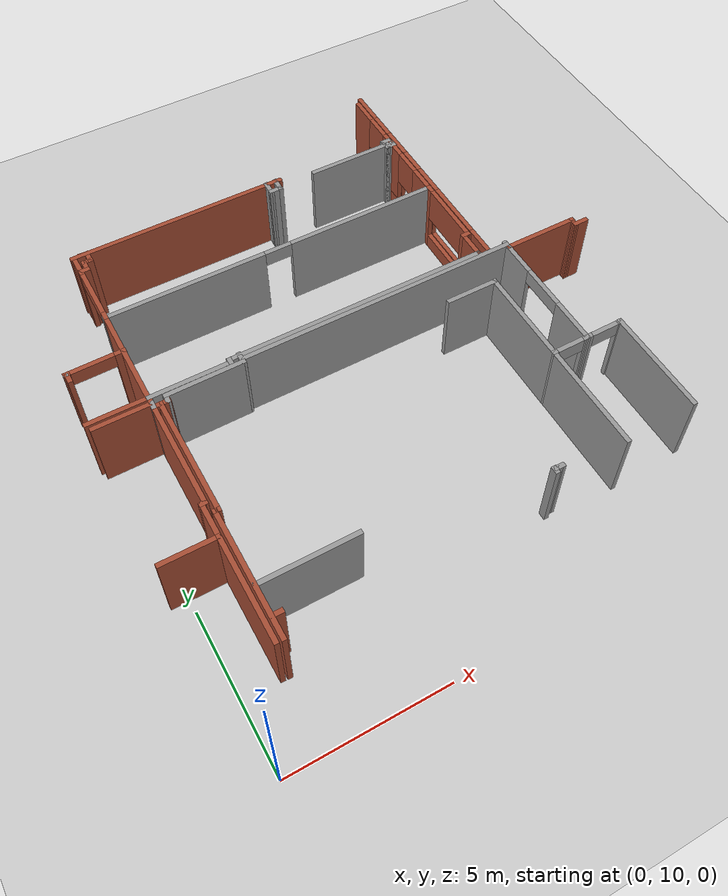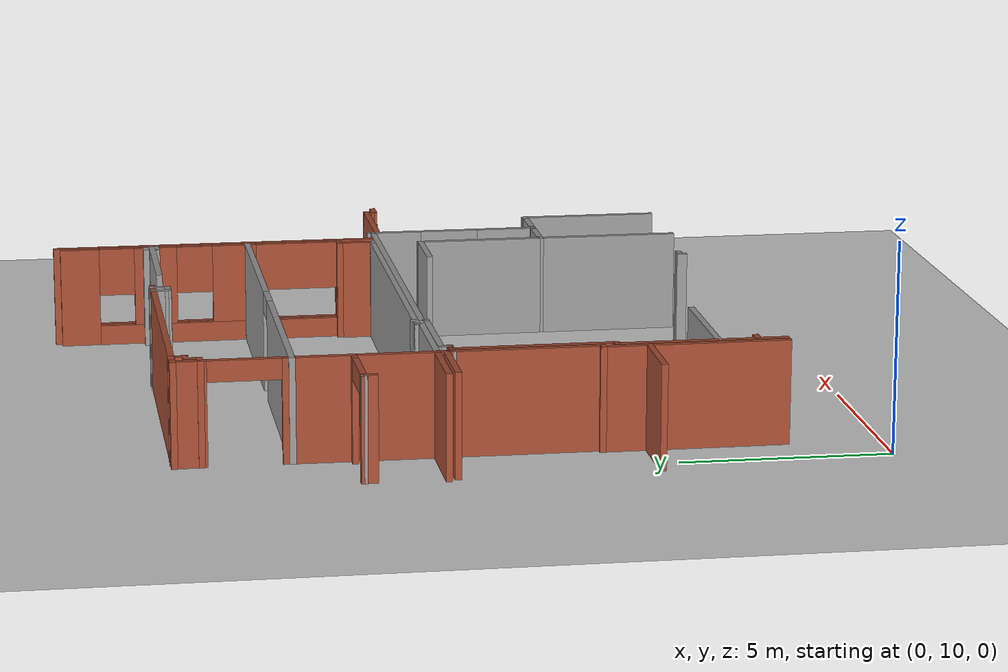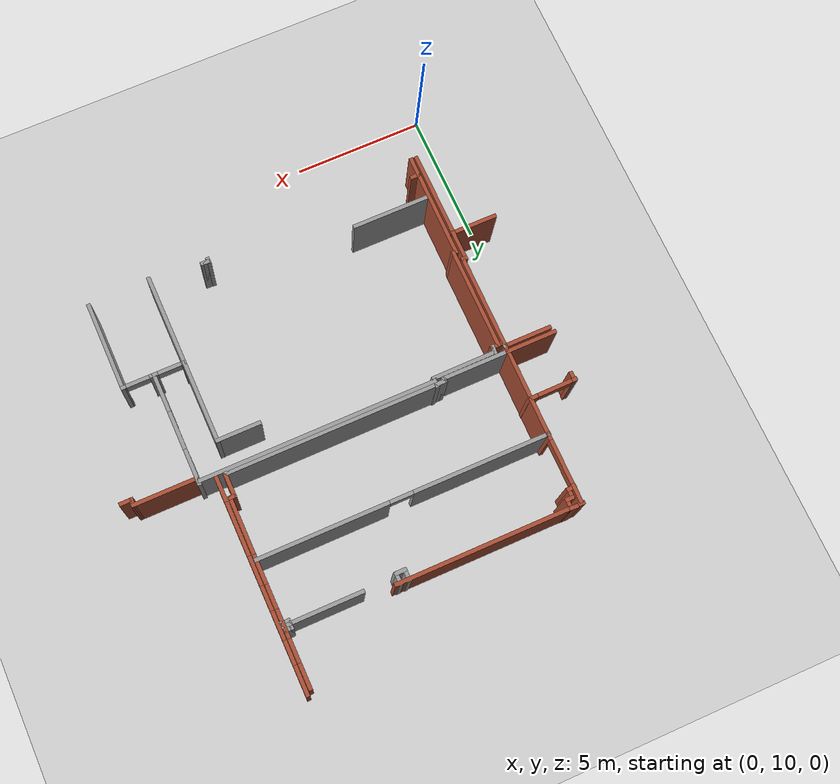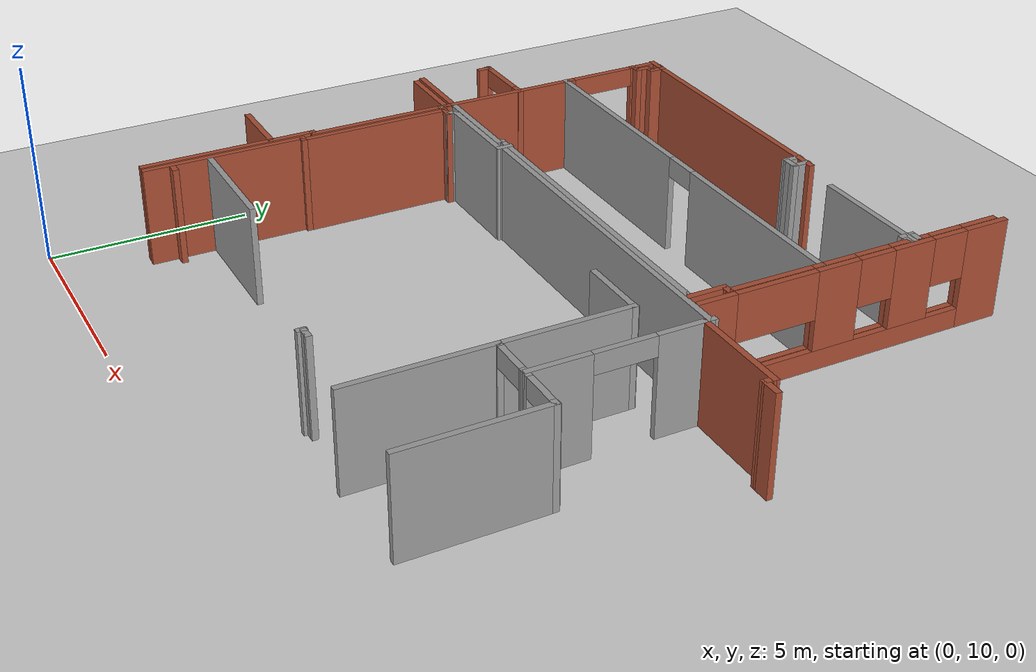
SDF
<sdf version="1.6">
 <world name="default">
  <model name="ground_plane">
   <static>1</static>
   <link name="link">
    <collision name="collision">
     <geometry><plane><normal>0 0 1</normal><size>100 100</size></plane></geometry>
     <surface><friction><ode><mu>100</mu><mu2>50</mu2></ode></friction></surface>
    </collision>
    <visual name="visual">
     <cast_shadows>0</cast_shadows>
     <geometry><plane><normal>0 0 1</normal><size>100 100</size></plane></geometry>
     <material>
      <script><uri>file://media/materials/scripts/gazebo.material</uri><name>Gazebo/Grey</name></script>
     </material>
    </visual>
   </link>
  </model>
  <model name="CVSSP">
   <pose>23.8714 24.094 0 0 -0 0</pose>
   <link name="Wall_427">
    <collision name="Wall_427_Collision">
     <geometry><box><size>7.25 0.15 2.5</size></box></geometry>
     <pose>0 0 1.25 0 -0 0</pose>
    </collision>
    <visual name="Wall_427_Visual">
     <pose>0 0 1.25 0 -0 0</pose>
     <geometry><box><size>7.25 0.15 2.5</size></box></geometry>
     <material>
      <script><uri>file://media/materials/scripts/gazebo.material</uri><name>Gazebo/Bricks</name></script>
      <ambient>1 1 1 1</ambient>
     </material>
    </visual>
    <pose>-19.076 2.26798 0 0 -0 3.14159</pose>
   </link>
   <link name="Wall_438">
    <pose>-11.4531 1.98101 0 0 0 -1.5708</pose>
    <visual name="Wall_438_Visual_0">
     <pose>-1.88418 0 1.25 0 -0 0</pose>
     <geometry><box><size>0.981638 0.15 2.5</size></box></geometry>
     <material>
      <script><uri>file://media/materials/scripts/gazebo.material</uri><name>Gazebo/Bricks</name></script>
      <ambient>1 1 1 1</ambient>
     </material>
    </visual>
    <collision name="Wall_438_Collision_0">
     <geometry><box><size>0.981638 0.15 2.5</size></box></geometry>
     <pose>-1.88418 0 1.25 0 -0 0</pose>
    </collision>
    <visual name="Wall_438_Visual_1">
     <pose>0.490819 0 0.25 0 -0 0</pose>
     <geometry><box><size>3.76836 0.15 0.5</size></box></geometry>
     <material>
      <script><uri>file://media/materials/scripts/gazebo.material</uri><name>Gazebo/Bricks</name></script>
      <ambient>1 1 1 1</ambient>
     </material>
    </visual>
    <collision name="Wall_438_Collision_1">
     <geometry><box><size>3.76836 0.15 0.5</size></box></geometry>
     <pose>0.490819 0 0.25 0 -0 0</pose>
    </collision>
    <visual name="Wall_438_Visual_2">
     <pose>0.039676 0 1.5 0 -0 0</pose>
     <geometry><box><size>1.08359 0.15 2</size></box></geometry>
     <material>
      <script><uri>file://media/materials/scripts/gazebo.material</uri><name>Gazebo/Bricks</name></script>
      <ambient>1 1 1 1</ambient>
     </material>
    </visual>
    <collision name="Wall_438_Collision_2">
     <geometry><box><size>1.08359 0.15 2</size></box></geometry>
     <pose>0.039676 0 1.5 0 -0 0</pose>
    </collision>
    <visual name="Wall_438_Visual_3">
     <pose>1.93363 0 1.5 0 -0 0</pose>
     <geometry><box><size>0.882734 0.15 2</size></box></geometry>
     <material>
      <script><uri>file://media/materials/scripts/gazebo.material</uri><name>Gazebo/Bricks</name></script>
      <ambient>1 1 1 1</ambient>
     </material>
    </visual>
    <collision name="Wall_438_Collision_3">
     <geometry><box><size>0.882734 0.15 2</size></box></geometry>
     <pose>1.93363 0 1.5 0 -0 0</pose>
    </collision>
    <visual name="Wall_438_Visual_4">
     <pose>-0.94774 0 1.9 0 -0 0</pose>
     <geometry><box><size>0.891243 0.15 1.2</size></box></geometry>
     <material>
      <script><uri>file://media/materials/scripts/gazebo.material</uri><name>Gazebo/Bricks</name></script>
      <ambient>1 1 1 1</ambient>
     </material>
    </visual>
    <collision name="Wall_438_Collision_4">
     <geometry><box><size>0.891243 0.15 1.2</size></box></geometry>
     <pose>-0.94774 0 1.9 0 -0 0</pose>
    </collision>
    <visual name="Wall_438_Visual_5">
     <pose>1.03687 0 1.9 0 -0 0</pose>
     <geometry><box><size>0.910795 0.15 1.2</size></box></geometry>
     <material>
      <script><uri>file://media/materials/scripts/gazebo.material</uri><name>Gazebo/Bricks</name></script>
      <ambient>1 1 1 1</ambient>
     </material>
    </visual>
    <collision name="Wall_438_Collision_5">
     <geometry><box><size>0.910795 0.15 1.2</size></box></geometry>
     <pose>1.03687 0 1.9 0 -0 0</pose>
    </collision>
   </link>
   <link name="Wall_440">
    <pose>-17.0303 -0.419062 0 0 -0 3.14158</pose>
    <visual name="Wall_440_Visual_0">
     <pose>-3.09878 0 1.25 0 -0 0</pose>
     <geometry><box><size>5.103 0.15 2.5</size></box></geometry>
     <material>
      <script><uri>file://media/materials/scripts/gazebo.material</uri><name>Gazebo/Grey</name></script>
      <ambient>0.588235 0.588235 0.588235 1</ambient>
     </material>
    </visual>
    <collision name="Wall_440_Collision_0">
     <geometry><box><size>5.103 0.15 2.5</size></box></geometry>
     <pose>-3.09878 0 1.25 0 -0 0</pose>
    </collision>
    <visual name="Wall_440_Visual_1">
     <pose>3.0015 0 1.25 0 -0 0</pose>
     <geometry><box><size>5.29756 0.15 2.5</size></box></geometry>
     <material>
      <script><uri>file://media/materials/scripts/gazebo.material</uri><name>Gazebo/Grey</name></script>
      <ambient>0.588235 0.588235 0.588235 1</ambient>
     </material>
    </visual>
    <collision name="Wall_440_Collision_1">
     <geometry><box><size>5.29756 0.15 2.5</size></box></geometry>
     <pose>3.0015 0 1.25 0 -0 0</pose>
    </collision>
    <visual name="Wall_440_Visual_2">
     <pose>-0.097282 0 2.25 0 -0 0</pose>
     <geometry><box><size>0.9 0.15 0.5</size></box></geometry>
     <material>
      <script><uri>file://media/materials/scripts/gazebo.material</uri><name>Gazebo/Grey</name></script>
      <ambient>0.588235 0.588235 0.588235 1</ambient>
     </material>
    </visual>
    <collision name="Wall_440_Collision_2">
     <geometry><box><size>0.9 0.15 0.5</size></box></geometry>
     <pose>-0.097282 0 2.25 0 -0 0</pose>
    </collision>
   </link>
   <link name="Wall_441">
    <pose>-22.5881 0.881009 0 0 -0 1.5708</pose>
    <visual name="Wall_441_Visual_0">
     <pose>-1.22545 0 1.25 0 -0 0</pose>
     <geometry><box><size>0.299105 0.15 2.5</size></box></geometry>
     <material>
      <script><uri>file://media/materials/scripts/gazebo.material</uri><name>Gazebo/Bricks</name></script>
      <ambient>1 1 1 1</ambient>
     </material>
    </visual>
    <collision name="Wall_441_Collision_0">
     <geometry><box><size>0.299105 0.15 2.5</size></box></geometry>
     <pose>-1.22545 0 1.25 0 -0 0</pose>
    </collision>
    <visual name="Wall_441_Visual_1">
     <pose>1.00205 0 1.25 0 -0 0</pose>
     <geometry><box><size>0.745895 0.15 2.5</size></box></geometry>
     <material>
      <script><uri>file://media/materials/scripts/gazebo.material</uri><name>Gazebo/Bricks</name></script>
      <ambient>1 1 1 1</ambient>
     </material>
    </visual>
    <collision name="Wall_441_Collision_1">
     <geometry><box><size>0.745895 0.15 2.5</size></box></geometry>
     <pose>1.00205 0 1.25 0 -0 0</pose>
    </collision>
    <visual name="Wall_441_Visual_2">
     <pose>-0.223395 0 2.25 0 -0 0</pose>
     <geometry><box><size>1.705 0.15 0.5</size></box></geometry>
     <material>
      <script><uri>file://media/materials/scripts/gazebo.material</uri><name>Gazebo/Bricks</name></script>
      <ambient>1 1 1 1</ambient>
     </material>
    </visual>
    <collision name="Wall_441_Collision_2">
     <geometry><box><size>1.705 0.15 0.5</size></box></geometry>
     <pose>-0.223395 0 2.25 0 -0 0</pose>
    </collision>
   </link>
   <link name="Wall_443">
    <collision name="Wall_443_Collision">
     <geometry><box><size>3.08833 0.15 2.5</size></box></geometry>
     <pose>0 0 1.25 0 -0 0</pose>
    </collision>
    <visual name="Wall_443_Visual">
     <pose>0 0 1.25 0 -0 0</pose>
     <geometry><box><size>3.08833 0.15 2.5</size></box></geometry>
     <material>
      <script><uri>file://media/materials/scripts/gazebo.material</uri><name>Gazebo/Grey</name></script>
      <ambient>0.588235 0.588235 0.588235 1</ambient>
     </material>
    </visual>
    <pose>-12.9025 2.02945 0 0 -0 3.14159</pose>
   </link>
   <link name="Wall_446">
    <collision name="Wall_446_Collision">
     <geometry><box><size>3.45993 0.15 2.5</size></box></geometry>
     <pose>0 0 1.25 0 -0 0</pose>
    </collision>
    <visual name="Wall_446_Visual">
     <pose>0 0 1.25 0 -0 0</pose>
     <geometry><box><size>3.45993 0.15 2.5</size></box></geometry>
     <material>
      <script><uri>file://media/materials/scripts/gazebo.material</uri><name>Gazebo/Bricks</name></script>
      <ambient>1 1 1 1</ambient>
     </material>
    </visual>
    <pose>-22.5968 -2.07393 0 0 0 -1.57608</pose>
   </link>
   <link name="Wall_447">
    <collision name="Wall_447_Collision">
     <geometry><box><size>2.66471 0.15 2.5</size></box></geometry>
     <pose>0 0 1.25 0 -0 0</pose>
    </collision>
    <visual name="Wall_447_Visual">
     <pose>0 0 1.25 0 -0 0</pose>
     <geometry><box><size>2.66471 0.15 2.5</size></box></geometry>
     <material>
      <script><uri>file://media/materials/scripts/gazebo.material</uri><name>Gazebo/Grey</name></script>
      <ambient>0.588235 0.588235 0.588235 1</ambient>
     </material>
    </visual>
    <pose>-21.3307 -3.72683 0 0 -0 0.001626</pose>
   </link>
   <link name="Wall_449">
    <collision name="Wall_449_Collision">
     <geometry><box><size>0.25 0.15 2.5</size></box></geometry>
     <pose>0 0 1.25 0 -0 0</pose>
    </collision>
    <visual name="Wall_449_Visual">
     <pose>0 0 1.25 0 -0 0</pose>
     <geometry><box><size>0.25 0.15 2.5</size></box></geometry>
     <material>
      <script><uri>file://media/materials/scripts/gazebo.material</uri><name>Gazebo/Grey</name></script>
      <ambient>1 1 1 1</ambient>
     </material>
    </visual>
    <pose>-20.0734 -3.67478 0 0 -0 1.5708</pose>
   </link>
   <link name="Wall_450">
    <collision name="Wall_450_Collision">
     <geometry><box><size>8.5 0.15 2.5</size></box></geometry>
     <pose>0 0 1.25 0 -0 0</pose>
    </collision>
    <visual name="Wall_450_Visual">
     <pose>0 0 1.25 0 -0 0</pose>
     <geometry><box><size>8.5 0.15 2.5</size></box></geometry>
     <material>
      <script><uri>file://media/materials/scripts/gazebo.material</uri><name>Gazebo/Grey</name></script>
      <ambient>0.588235 0.588235 0.588235 1</ambient>
     </material>
    </visual>
    <pose>-15.8984 -3.62478 0 0 -0 0</pose>
   </link>
   <link name="Wall_451">
    <collision name="Wall_451_Collision">
     <geometry><box><size>0.25 0.15 2.5</size></box></geometry>
     <pose>0 0 1.25 0 -0 0</pose>
    </collision>
    <visual name="Wall_451_Visual">
     <pose>0 0 1.25 0 -0 0</pose>
     <geometry><box><size>0.25 0.15 2.5</size></box></geometry>
     <material>
      <script><uri>file://media/materials/scripts/gazebo.material</uri><name>Gazebo/Grey</name></script>
      <ambient>1 1 1 1</ambient>
     </material>
    </visual>
    <pose>-11.6734 -3.62478 0 0 -0 0</pose>
   </link>
   <link name="Wall_452">
    <collision name="Wall_452_Collision">
     <geometry><box><size>1 0.15 2.5</size></box></geometry>
     <pose>0 0 1.25 0 -0 0</pose>
    </collision>
    <visual name="Wall_452_Visual">
     <pose>0 0 1.25 0 -0 0</pose>
     <geometry><box><size>1 0.15 2.5</size></box></geometry>
     <material>
      <script><uri>file://media/materials/scripts/gazebo.material</uri><name>Gazebo/Bricks</name></script>
      <ambient>1 1 1 1</ambient>
     </material>
    </visual>
    <pose>-11.6234 -3.19978 0 0 -0 1.5708</pose>
   </link>
   <link name="Wall_453">
    <collision name="Wall_453_Collision">
     <geometry><box><size>0.31087 0.15 2.5</size></box></geometry>
     <pose>0 0 1.25 0 -0 0</pose>
    </collision>
    <visual name="Wall_453_Visual">
     <pose>0 0 1.25 0 -0 0</pose>
     <geometry><box><size>0.31087 0.15 2.5</size></box></geometry>
     <material>
      <script><uri>file://media/materials/scripts/gazebo.material</uri><name>Gazebo/Bricks</name></script>
      <ambient>1 1 1 1</ambient>
     </material>
    </visual>
    <pose>-11.543 -2.77478 0 0 -0 0</pose>
   </link>
   <link name="Wall_456">
    <pose>-11.4588 -1.59696 0 0 0 -1.57398</pose>
    <visual name="Wall_456_Visual_0">
     <pose>-1.10718 0 1.25 0 -0 0</pose>
     <geometry><box><size>0.291309 0.15 2.5</size></box></geometry>
     <material>
      <script><uri>file://media/materials/scripts/gazebo.material</uri><name>Gazebo/Bricks</name></script>
      <ambient>1 1 1 1</ambient>
     </material>
    </visual>
    <collision name="Wall_456_Collision_0">
     <geometry><box><size>0.291309 0.15 2.5</size></box></geometry>
     <pose>-1.10718 0 1.25 0 -0 0</pose>
    </collision>
    <visual name="Wall_456_Visual_1">
     <pose>0.145655 0 0.25 0 -0 0</pose>
     <geometry><box><size>2.21435 0.15 0.5</size></box></geometry>
     <material>
      <script><uri>file://media/materials/scripts/gazebo.material</uri><name>Gazebo/Bricks</name></script>
      <ambient>1 1 1 1</ambient>
     </material>
    </visual>
    <collision name="Wall_456_Collision_1">
     <geometry><box><size>2.21435 0.15 0.5</size></box></geometry>
     <pose>0.145655 0 0.25 0 -0 0</pose>
    </collision>
    <visual name="Wall_456_Visual_2">
     <pose>1.18044 0 1.5 0 -0 0</pose>
     <geometry><box><size>0.144785 0.15 2</size></box></geometry>
     <material>
      <script><uri>file://media/materials/scripts/gazebo.material</uri><name>Gazebo/Bricks</name></script>
      <ambient>1 1 1 1</ambient>
     </material>
    </visual>
    <collision name="Wall_456_Collision_2">
     <geometry><box><size>0.144785 0.15 2</size></box></geometry>
     <pose>1.18044 0 1.5 0 -0 0</pose>
    </collision>
    <visual name="Wall_456_Visual_3">
     <pose>0.073262 0 1.9 0 -0 0</pose>
     <geometry><box><size>2.06957 0.15 1.2</size></box></geometry>
     <material>
      <script><uri>file://media/materials/scripts/gazebo.material</uri><name>Gazebo/Bricks</name></script>
      <ambient>1 1 1 1</ambient>
     </material>
    </visual>
    <collision name="Wall_456_Collision_3">
     <geometry><box><size>2.06957 0.15 1.2</size></box></geometry>
     <pose>0.073262 0 1.9 0 -0 0</pose>
    </collision>
   </link>
   <link name="Wall_462">
    <pose>-11.2891 0.422048 0 0 0 -1.5708</pose>
    <visual name="Wall_462_Visual_0">
     <pose>-3.525 0 1.25 0 -0 0</pose>
     <geometry><box><size>1.14727 0.15 2.5</size></box></geometry>
     <material>
      <script><uri>file://media/materials/scripts/gazebo.material</uri><name>Gazebo/Bricks</name></script>
      <ambient>1 1 1 1</ambient>
     </material>
    </visual>
    <collision name="Wall_462_Collision_0">
     <geometry><box><size>1.14727 0.15 2.5</size></box></geometry>
     <pose>-3.525 0 1.25 0 -0 0</pose>
    </collision>
    <visual name="Wall_462_Visual_1">
     <pose>0.573634 0 0.25 0 -0 0</pose>
     <geometry><box><size>7.04999 0.15 0.5</size></box></geometry>
     <material>
      <script><uri>file://media/materials/scripts/gazebo.material</uri><name>Gazebo/Bricks</name></script>
      <ambient>1 1 1 1</ambient>
     </material>
    </visual>
    <collision name="Wall_462_Collision_1">
     <geometry><box><size>7.04999 0.15 0.5</size></box></geometry>
     <pose>0.573634 0 0.25 0 -0 0</pose>
    </collision>
    <visual name="Wall_462_Visual_2">
     <pose>-1.51444 0 1.5 0 -0 0</pose>
     <geometry><box><size>1.07833 0.15 2</size></box></geometry>
     <material>
      <script><uri>file://media/materials/scripts/gazebo.material</uri><name>Gazebo/Bricks</name></script>
      <ambient>1 1 1 1</ambient>
     </material>
    </visual>
    <collision name="Wall_462_Collision_2">
     <geometry><box><size>1.07833 0.15 2</size></box></geometry>
     <pose>-1.51444 0 1.5 0 -0 0</pose>
    </collision>
    <visual name="Wall_462_Visual_3">
     <pose>0.505032 0 1.5 0 -0 0</pose>
     <geometry><box><size>1.11295 0.15 2</size></box></geometry>
     <material>
      <script><uri>file://media/materials/scripts/gazebo.material</uri><name>Gazebo/Bricks</name></script>
      <ambient>1 1 1 1</ambient>
     </material>
    </visual>
    <collision name="Wall_462_Collision_3">
     <geometry><box><size>1.11295 0.15 2</size></box></geometry>
     <pose>0.505032 0 1.5 0 -0 0</pose>
    </collision>
    <visual name="Wall_462_Visual_4">
     <pose>3.60899 0 1.5 0 -0 0</pose>
     <geometry><box><size>0.979272 0.15 2</size></box></geometry>
     <material>
      <script><uri>file://media/materials/scripts/gazebo.material</uri><name>Gazebo/Bricks</name></script>
      <ambient>1 1 1 1</ambient>
     </material>
    </visual>
    <collision name="Wall_462_Collision_4">
     <geometry><box><size>0.979272 0.15 2</size></box></geometry>
     <pose>3.60899 0 1.5 0 -0 0</pose>
    </collision>
    <visual name="Wall_462_Visual_5">
     <pose>-2.50248 0 1.9 0 -0 0</pose>
     <geometry><box><size>0.89776 0.15 1.2</size></box></geometry>
     <material>
      <script><uri>file://media/materials/scripts/gazebo.material</uri><name>Gazebo/Bricks</name></script>
      <ambient>1 1 1 1</ambient>
     </material>
    </visual>
    <collision name="Wall_462_Collision_5">
     <geometry><box><size>0.89776 0.15 1.2</size></box></geometry>
     <pose>-2.50248 0 1.9 0 -0 0</pose>
    </collision>
    <visual name="Wall_462_Visual_6">
     <pose>-0.513357 0 1.9 0 -0 0</pose>
     <geometry><box><size>0.92383 0.15 1.2</size></box></geometry>
     <material>
      <script><uri>file://media/materials/scripts/gazebo.material</uri><name>Gazebo/Bricks</name></script>
      <ambient>1 1 1 1</ambient>
     </material>
    </visual>
    <collision name="Wall_462_Collision_6">
     <geometry><box><size>0.92383 0.15 1.2</size></box></geometry>
     <pose>-0.513357 0 1.9 0 -0 0</pose>
    </collision>
    <visual name="Wall_462_Visual_7">
     <pose>2.09043 0 1.9 0 -0 0</pose>
     <geometry><box><size>2.05785 0.15 1.2</size></box></geometry>
     <material>
      <script><uri>file://media/materials/scripts/gazebo.material</uri><name>Gazebo/Bricks</name></script>
      <ambient>1 1 1 1</ambient>
     </material>
    </visual>
    <collision name="Wall_462_Collision_7">
     <geometry><box><size>2.05785 0.15 1.2</size></box></geometry>
     <pose>2.09043 0 1.9 0 -0 0</pose>
    </collision>
   </link>
   <link name="Wall_472">
    <pose>-23.462 -1.83453 0 0 0 -3.13211</pose>
    <visual name="Wall_472_Visual_0">
     <pose>-0.773733 0 1.25 0 -0 0</pose>
     <geometry><box><size>0.368389 0.15 2.5</size></box></geometry>
     <material>
      <script><uri>file://media/materials/scripts/gazebo.material</uri><name>Gazebo/Bricks</name></script>
      <ambient>1 1 1 1</ambient>
     </material>
    </visual>
    <collision name="Wall_472_Collision_0">
     <geometry><box><size>0.368389 0.15 2.5</size></box></geometry>
     <pose>-0.773733 0 1.25 0 -0 0</pose>
    </collision>
    <visual name="Wall_472_Visual_1">
     <pose>0.857678 0 1.25 0 -0 0</pose>
     <geometry><box><size>0.2005 0.15 2.5</size></box></geometry>
     <material>
      <script><uri>file://media/materials/scripts/gazebo.material</uri><name>Gazebo/Bricks</name></script>
      <ambient>1 1 1 1</ambient>
     </material>
    </visual>
    <collision name="Wall_472_Collision_1">
     <geometry><box><size>0.2005 0.15 2.5</size></box></geometry>
     <pose>0.857678 0 1.25 0 -0 0</pose>
    </collision>
    <visual name="Wall_472_Visual_2">
     <pose>0.083944 0 2.25 0 -0 0</pose>
     <geometry><box><size>1.34697 0.15 0.5</size></box></geometry>
     <material>
      <script><uri>file://media/materials/scripts/gazebo.material</uri><name>Gazebo/Bricks</name></script>
      <ambient>1 1 1 1</ambient>
     </material>
    </visual>
    <collision name="Wall_472_Collision_2">
     <geometry><box><size>1.34697 0.15 0.5</size></box></geometry>
     <pose>0.083944 0 2.25 0 -0 0</pose>
    </collision>
   </link>
   <link name="Wall_473">
    <collision name="Wall_473_Collision">
     <geometry><box><size>0.15 0.15 2.5</size></box></geometry>
     <pose>0 0 1.25 0 -0 0</pose>
    </collision>
    <visual name="Wall_473_Visual">
     <pose>0 0 1.25 0 -0 0</pose>
     <geometry><box><size>0.15 0.15 2.5</size></box></geometry>
     <material>
      <script><uri>file://media/materials/scripts/gazebo.material</uri><name>Gazebo/Grey</name></script>
      <ambient>1 1 1 1</ambient>
     </material>
    </visual>
    <pose>-24.3449 -1.8429 0 0 -0 0</pose>
   </link>
   <link name="Wall_476">
    <collision name="Wall_476_Collision">
     <geometry><box><size>0.342391 0.15 2.5</size></box></geometry>
     <pose>0 0 1.25 0 -0 0</pose>
    </collision>
    <visual name="Wall_476_Visual">
     <pose>0 0 1.25 0 -0 0</pose>
     <geometry><box><size>0.342391 0.15 2.5</size></box></geometry>
     <material>
      <script><uri>file://media/materials/scripts/gazebo.material</uri><name>Gazebo/Bricks</name></script>
      <ambient>1 1 1 1</ambient>
     </material>
    </visual>
    <pose>-24.3099 -1.99157 0 0 -0 1.5708</pose>
   </link>
   <link name="Wall_481">
    <collision name="Wall_481_Collision">
     <geometry><box><size>2 0.15 2.5</size></box></geometry>
     <pose>0 0 1.25 0 -0 0</pose>
    </collision>
    <visual name="Wall_481_Visual">
     <pose>0 0 1.25 0 -0 0</pose>
     <geometry><box><size>2 0.15 2.5</size></box></geometry>
     <material>
      <script><uri>file://media/materials/scripts/gazebo.material</uri><name>Gazebo/Bricks</name></script>
      <ambient>1 1 1 1</ambient>
     </material>
    </visual>
    <pose>-23.5131 -3.72887 0 0 -0 3.14159</pose>
   </link>
   <link name="Wall_483">
    <collision name="Wall_483_Collision">
     <geometry><box><size>0.368526 0.15 2.5</size></box></geometry>
     <pose>0 0 1.25 0 -0 0</pose>
    </collision>
    <visual name="Wall_483_Visual">
     <pose>0 0 1.25 0 -0 0</pose>
     <geometry><box><size>0.368526 0.15 2.5</size></box></geometry>
     <material>
      <script><uri>file://media/materials/scripts/gazebo.material</uri><name>Gazebo/Bricks</name></script>
      <ambient>1 1 1 1</ambient>
     </material>
    </visual>
    <pose>-22.5906 -3.83811 0 0 0 -1.59404</pose>
   </link>
   <link name="Wall_484">
    <collision name="Wall_484_Collision">
     <geometry><box><size>1.89901 0.15 2.5</size></box></geometry>
     <pose>0 0 1.25 0 -0 0</pose>
    </collision>
    <visual name="Wall_484_Visual">
     <pose>0 0 1.25 0 -0 0</pose>
     <geometry><box><size>1.89901 0.15 2.5</size></box></geometry>
     <material>
      <script><uri>file://media/materials/scripts/gazebo.material</uri><name>Gazebo/Bricks</name></script>
      <ambient>1 1 1 1</ambient>
     </material>
    </visual>
    <pose>-23.4677 -3.94734 0 0 -0 3.14159</pose>
   </link>
   <link name="Wall_486">
    <collision name="Wall_486_Collision">
     <geometry><box><size>0.44095 0.15 2.5</size></box></geometry>
     <pose>0 0 1.25 0 -0 0</pose>
    </collision>
    <visual name="Wall_486_Visual">
     <pose>0 0 1.25 0 -0 0</pose>
     <geometry><box><size>0.44095 0.15 2.5</size></box></geometry>
     <material>
      <script><uri>file://media/materials/scripts/gazebo.material</uri><name>Gazebo/Grey</name></script>
      <ambient>1 1 1 1</ambient>
     </material>
    </visual>
    <pose>-19.7491 -3.7278 0 0 0 -1.5708</pose>
   </link>
   <link name="Wall_487">
    <collision name="Wall_487_Collision">
     <geometry><box><size>2.55302 0.15 2.5</size></box></geometry>
     <pose>0 0 1.25 0 -0 0</pose>
    </collision>
    <visual name="Wall_487_Visual">
     <pose>0 0 1.25 0 -0 0</pose>
     <geometry><box><size>2.55302 0.15 2.5</size></box></geometry>
     <material>
      <script><uri>file://media/materials/scripts/gazebo.material</uri><name>Gazebo/Grey</name></script>
      <ambient>0.588235 0.588235 0.588235 1</ambient>
     </material>
    </visual>
    <pose>-20.9506 -3.87989 0 0 0 -3.13609</pose>
   </link>
   <link name="Wall_488">
    <collision name="Wall_488_Collision">
     <geometry><box><size>0.348298 0.15 2.5</size></box></geometry>
     <pose>0 0 1.25 0 -0 0</pose>
    </collision>
    <visual name="Wall_488_Visual">
     <pose>0 0 1.25 0 -0 0</pose>
     <geometry><box><size>0.348298 0.15 2.5</size></box></geometry>
     <material>
      <script><uri>file://media/materials/scripts/gazebo.material</uri><name>Gazebo/Grey</name></script>
      <ambient>1 1 1 1</ambient>
     </material>
    </visual>
    <pose>-22.1597 -3.98536 0 0 0 -1.64757</pose>
   </link>
   <link name="Wall_490">
    <collision name="Wall_490_Collision">
     <geometry><box><size>0.287462 0.15 2.5</size></box></geometry>
     <pose>0 0 1.25 0 -0 0</pose>
    </collision>
    <visual name="Wall_490_Visual">
     <pose>0 0 1.25 0 -0 0</pose>
     <geometry><box><size>0.287462 0.15 2.5</size></box></geometry>
     <material>
      <script><uri>file://media/materials/scripts/gazebo.material</uri><name>Gazebo/Grey</name></script>
      <ambient>1 1 1 1</ambient>
     </material>
    </visual>
    <pose>-22.5946 -4.01605 0 0 0 -1.59176</pose>
   </link>
   <link name="Wall_491">
    <collision name="Wall_491_Collision">
     <geometry><box><size>0.593962 0.15 2.5</size></box></geometry>
     <pose>0 0 1.25 0 -0 0</pose>
    </collision>
    <visual name="Wall_491_Visual">
     <pose>0 0 1.25 0 -0 0</pose>
     <geometry><box><size>0.593962 0.15 2.5</size></box></geometry>
     <material>
      <script><uri>file://media/materials/scripts/gazebo.material</uri><name>Gazebo/Bricks</name></script>
      <ambient>1 1 1 1</ambient>
     </material>
    </visual>
    <pose>-22.3741 -4.08449 0 0 -0 0.001245</pose>
   </link>
   <link name="Wall_493">
    <collision name="Wall_493_Collision">
     <geometry><box><size>3.61071 0.15 2.5</size></box></geometry>
     <pose>0 0 1.25 0 -0 0</pose>
    </collision>
    <visual name="Wall_493_Visual">
     <pose>0 0 1.25 0 -0 0</pose>
     <geometry><box><size>3.61071 0.15 2.5</size></box></geometry>
     <material>
      <script><uri>file://media/materials/scripts/gazebo.material</uri><name>Gazebo/Bricks</name></script>
      <ambient>1 1 1 1</ambient>
     </material>
    </visual>
    <pose>-22.5979 -5.81513 0 0 0 -1.57189</pose>
   </link>
   <link name="Wall_494">
    <collision name="Wall_494_Collision">
     <geometry><box><size>0.25 0.15 2.5</size></box></geometry>
     <pose>0 0 1.25 0 -0 0</pose>
    </collision>
    <visual name="Wall_494_Visual">
     <pose>0 0 1.25 0 -0 0</pose>
     <geometry><box><size>0.25 0.15 2.5</size></box></geometry>
     <material>
      <script><uri>file://media/materials/scripts/gazebo.material</uri><name>Gazebo/Bricks</name></script>
      <ambient>1 1 1 1</ambient>
     </material>
    </visual>
    <pose>-22.6498 -7.54548 0 0 -0 3.14159</pose>
   </link>
   <link name="Wall_495">
    <collision name="Wall_495_Collision">
     <geometry><box><size>1.21522 0.15 2.5</size></box></geometry>
     <pose>0 0 1.25 0 -0 0</pose>
    </collision>
    <visual name="Wall_495_Visual">
     <pose>0 0 1.25 0 -0 0</pose>
     <geometry><box><size>1.21522 0.15 2.5</size></box></geometry>
     <material>
      <script><uri>file://media/materials/scripts/gazebo.material</uri><name>Gazebo/Bricks</name></script>
      <ambient>1 1 1 1</ambient>
     </material>
    </visual>
    <pose>-22.6998 -8.07809 0 0 0 -1.5708</pose>
   </link>
   <link name="Wall_497">
    <collision name="Wall_497_Collision">
     <geometry><box><size>1.80653 0.15 2.5</size></box></geometry>
     <pose>0 0 1.25 0 -0 0</pose>
    </collision>
    <visual name="Wall_497_Visual">
     <pose>0 0 1.25 0 -0 0</pose>
     <geometry><box><size>1.80653 0.15 2.5</size></box></geometry>
     <material>
      <script><uri>file://media/materials/scripts/gazebo.material</uri><name>Gazebo/Bricks</name></script>
      <ambient>1 1 1 1</ambient>
     </material>
    </visual>
    <pose>-23.5281 -8.61722 0 0 -0 3.13897</pose>
   </link>
   <link name="Wall_500">
    <collision name="Wall_500_Collision">
     <geometry><box><size>3.96739 0.15 2.5</size></box></geometry>
     <pose>0 0 1.25 0 -0 0</pose>
    </collision>
    <visual name="Wall_500_Visual">
     <pose>0 0 1.25 0 -0 0</pose>
     <geometry><box><size>3.96739 0.15 2.5</size></box></geometry>
     <material>
      <script><uri>file://media/materials/scripts/gazebo.material</uri><name>Gazebo/Bricks</name></script>
      <ambient>1 1 1 1</ambient>
     </material>
    </visual>
    <pose>-22.3824 -5.99331 0 0 0 -1.5708</pose>
   </link>
   <link name="Wall_502">
    <collision name="Wall_502_Collision">
     <geometry><box><size>0.25 0.15 2.5</size></box></geometry>
     <pose>0 0 1.25 0 -0 0</pose>
    </collision>
    <visual name="Wall_502_Visual">
     <pose>0 0 1.25 0 -0 0</pose>
     <geometry><box><size>0.25 0.15 2.5</size></box></geometry>
     <material>
      <script><uri>file://media/materials/scripts/gazebo.material</uri><name>Gazebo/Bricks</name></script>
      <ambient>1 1 1 1</ambient>
     </material>
    </visual>
    <pose>-22.4324 -7.902 0 0 -0 3.14159</pose>
   </link>
   <link name="Wall_503">
    <collision name="Wall_503_Collision">
     <geometry><box><size>4.11037 0.15 2.5</size></box></geometry>
     <pose>0 0 1.25 0 -0 0</pose>
    </collision>
    <visual name="Wall_503_Visual">
     <pose>0 0 1.25 0 -0 0</pose>
     <geometry><box><size>4.11037 0.15 2.5</size></box></geometry>
     <material>
      <script><uri>file://media/materials/scripts/gazebo.material</uri><name>Gazebo/Bricks</name></script>
      <ambient>1 1 1 1</ambient>
     </material>
    </visual>
    <pose>-22.4867 -9.88218 0 0 0 -1.57292</pose>
   </link>
   <link name="Wall_522">
    <collision name="Wall_522_Collision">
     <geometry><box><size>3.38312 0.15 2.5</size></box></geometry>
     <pose>0 0 1.25 0 -0 0</pose>
    </collision>
    <visual name="Wall_522_Visual">
     <pose>0 0 1.25 0 -0 0</pose>
     <geometry><box><size>3.38312 0.15 2.5</size></box></geometry>
     <material>
      <script><uri>file://media/materials/scripts/gazebo.material</uri><name>Gazebo/Bricks</name></script>
      <ambient>1 1 1 1</ambient>
     </material>
    </visual>
    <pose>-22.6978 -10.236 0 0 -0 1.57204</pose>
   </link>
   <link name="Wall_524">
    <pose>-10.6649 -5.806 0 0 0 -1.5708</pose>
    <visual name="Wall_524_Visual_0">
     <pose>-1.50177 0 1.25 0 -0 0</pose>
     <geometry><box><size>1.40395 0.15 2.5</size></box></geometry>
     <material>
      <script><uri>file://media/materials/scripts/gazebo.material</uri><name>Gazebo/Grey</name></script>
      <ambient>0.588235 0.588235 0.588235 1</ambient>
     </material>
    </visual>
    <collision name="Wall_524_Collision_0">
     <geometry><box><size>1.40395 0.15 2.5</size></box></geometry>
     <pose>-1.50177 0 1.25 0 -0 0</pose>
    </collision>
    <visual name="Wall_524_Visual_1">
     <pose>1.44258 0 1.25 0 -0 0</pose>
     <geometry><box><size>1.52232 0.15 2.5</size></box></geometry>
     <material>
      <script><uri>file://media/materials/scripts/gazebo.material</uri><name>Gazebo/Grey</name></script>
      <ambient>0.588235 0.588235 0.588235 1</ambient>
     </material>
    </visual>
    <collision name="Wall_524_Collision_1">
     <geometry><box><size>1.52232 0.15 2.5</size></box></geometry>
     <pose>1.44258 0 1.25 0 -0 0</pose>
    </collision>
    <visual name="Wall_524_Visual_2">
     <pose>-0.059186 0 2.25 0 -0 0</pose>
     <geometry><box><size>1.48121 0.15 0.5</size></box></geometry>
     <material>
      <script><uri>file://media/materials/scripts/gazebo.material</uri><name>Gazebo/Grey</name></script>
      <ambient>0.588235 0.588235 0.588235 1</ambient>
     </material>
    </visual>
    <collision name="Wall_524_Collision_2">
     <geometry><box><size>1.48121 0.15 0.5</size></box></geometry>
     <pose>-0.059186 0 2.25 0 -0 0</pose>
    </collision>
   </link>
   <link name="Wall_525">
    <pose>-11.2447 -7.9568 0 0 -0 3.13973</pose>
    <visual name="Wall_525_Visual_0">
     <pose>-0.544548 0 1.25 0 -0 0</pose>
     <geometry><box><size>0.220502 0.15 2.5</size></box></geometry>
     <material>
      <script><uri>file://media/materials/scripts/gazebo.material</uri><name>Gazebo/Grey</name></script>
      <ambient>0.588235 0.588235 0.588235 1</ambient>
     </material>
    </visual>
    <collision name="Wall_525_Collision_0">
     <geometry><box><size>0.220502 0.15 2.5</size></box></geometry>
     <pose>-0.544548 0 1.25 0 -0 0</pose>
    </collision>
    <visual name="Wall_525_Visual_1">
     <pose>0.560251 0 1.25 0 -0 0</pose>
     <geometry><box><size>0.189095 0.15 2.5</size></box></geometry>
     <material>
      <script><uri>file://media/materials/scripts/gazebo.material</uri><name>Gazebo/Grey</name></script>
      <ambient>0.588235 0.588235 0.588235 1</ambient>
     </material>
    </visual>
    <collision name="Wall_525_Collision_1">
     <geometry><box><size>0.189095 0.15 2.5</size></box></geometry>
     <pose>0.560251 0 1.25 0 -0 0</pose>
    </collision>
    <visual name="Wall_525_Visual_2">
     <pose>0.015703 0 2.25 0 -0 0</pose>
     <geometry><box><size>0.9 0.15 0.5</size></box></geometry>
     <material>
      <script><uri>file://media/materials/scripts/gazebo.material</uri><name>Gazebo/Grey</name></script>
      <ambient>0.588235 0.588235 0.588235 1</ambient>
     </material>
    </visual>
    <collision name="Wall_525_Collision_2">
     <geometry><box><size>0.9 0.15 0.5</size></box></geometry>
     <pose>0.015703 0 2.25 0 -0 0</pose>
    </collision>
   </link>
   <link name="Wall_526">
    <collision name="Wall_526_Collision">
     <geometry><box><size>3.58305 0.15 2.5</size></box></geometry>
     <pose>0 0 1.25 0 -0 0</pose>
    </collision>
    <visual name="Wall_526_Visual">
     <pose>0 0 1.25 0 -0 0</pose>
     <geometry><box><size>3.58305 0.15 2.5</size></box></geometry>
     <material>
      <script><uri>file://media/materials/scripts/gazebo.material</uri><name>Gazebo/Grey</name></script>
      <ambient>0.588235 0.588235 0.588235 1</ambient>
     </material>
    </visual>
    <pose>-11.8234 -9.67224 0 0 0 -1.5702</pose>
   </link>
   <link name="Wall_528">
    <pose>-10.0632 -7.95787 0 0 -0 0</pose>
    <visual name="Wall_528_Visual_0">
     <pose>-0.550159 0 1.25 0 -0 0</pose>
     <geometry><box><size>0.253402 0.15 2.5</size></box></geometry>
     <material>
      <script><uri>file://media/materials/scripts/gazebo.material</uri><name>Gazebo/Grey</name></script>
      <ambient>0.588235 0.588235 0.588235 1</ambient>
     </material>
    </visual>
    <collision name="Wall_528_Collision_0">
     <geometry><box><size>0.253402 0.15 2.5</size></box></geometry>
     <pose>-0.550159 0 1.25 0 -0 0</pose>
    </collision>
    <visual name="Wall_528_Visual_1">
     <pose>0.576701 0 1.25 0 -0 0</pose>
     <geometry><box><size>0.200318 0.15 2.5</size></box></geometry>
     <material>
      <script><uri>file://media/materials/scripts/gazebo.material</uri><name>Gazebo/Grey</name></script>
      <ambient>0.588235 0.588235 0.588235 1</ambient>
     </material>
    </visual>
    <collision name="Wall_528_Collision_1">
     <geometry><box><size>0.200318 0.15 2.5</size></box></geometry>
     <pose>0.576701 0 1.25 0 -0 0</pose>
    </collision>
    <visual name="Wall_528_Visual_2">
     <pose>0.026542 0 2.25 0 -0 0</pose>
     <geometry><box><size>0.9 0.15 0.5</size></box></geometry>
     <material>
      <script><uri>file://media/materials/scripts/gazebo.material</uri><name>Gazebo/Grey</name></script>
      <ambient>0.588235 0.588235 0.588235 1</ambient>
     </material>
    </visual>
    <collision name="Wall_528_Collision_2">
     <geometry><box><size>0.9 0.15 0.5</size></box></geometry>
     <pose>0.026542 0 2.25 0 -0 0</pose>
    </collision>
   </link>
   <link name="Wall_529">
    <collision name="Wall_529_Collision">
     <geometry><box><size>3.5 0.15 2.5</size></box></geometry>
     <pose>0 0 1.25 0 -0 0</pose>
    </collision>
    <visual name="Wall_529_Visual">
     <pose>0 0 1.25 0 -0 0</pose>
     <geometry><box><size>3.5 0.15 2.5</size></box></geometry>
     <material>
      <script><uri>file://media/materials/scripts/gazebo.material</uri><name>Gazebo/Grey</name></script>
      <ambient>0.588235 0.588235 0.588235 1</ambient>
     </material>
    </visual>
    <pose>-9.4614 -9.62137 0 0 0 -1.5708</pose>
   </link>
   <link name="Wall_531">
    <collision name="Wall_531_Collision">
     <geometry><box><size>3.27645 0.15 2.5</size></box></geometry>
     <pose>0 0 1.25 0 -0 0</pose>
    </collision>
    <visual name="Wall_531_Visual">
     <pose>0 0 1.25 0 -0 0</pose>
     <geometry><box><size>3.27645 0.15 2.5</size></box></geometry>
     <material>
      <script><uri>file://media/materials/scripts/gazebo.material</uri><name>Gazebo/Grey</name></script>
      <ambient>0.588235 0.588235 0.588235 1</ambient>
     </material>
    </visual>
    <pose>-11.8245 -6.39249 0 0 -0 1.5708</pose>
   </link>
   <link name="Wall_558">
    <collision name="Wall_558_Collision">
     <geometry><box><size>0.25 0.15 2.5</size></box></geometry>
     <pose>0 0 1.25 0 -0 0</pose>
    </collision>
    <visual name="Wall_558_Visual">
     <pose>0 0 1.25 0 -0 0</pose>
     <geometry><box><size>0.25 0.15 2.5</size></box></geometry>
     <material>
      <script><uri>file://media/materials/scripts/gazebo.material</uri><name>Gazebo/Grey</name></script>
      <ambient>1 1 1 1</ambient>
     </material>
    </visual>
    <pose>-13.8779 -11.1683 0 0 -0 3.14159</pose>
   </link>
   <link name="Wall_559">
    <collision name="Wall_559_Collision">
     <geometry><box><size>0.25 0.15 2.5</size></box></geometry>
     <pose>0 0 1.25 0 -0 0</pose>
    </collision>
    <visual name="Wall_559_Visual">
     <pose>0 0 1.25 0 -0 0</pose>
     <geometry><box><size>0.25 0.15 2.5</size></box></geometry>
     <material>
      <script><uri>file://media/materials/scripts/gazebo.material</uri><name>Gazebo/Grey</name></script>
      <ambient>1 1 1 1</ambient>
     </material>
    </visual>
    <pose>-13.9779 -11.1683 0 0 -0 3.14159</pose>
   </link>
   <link name="Wall_562">
    <collision name="Wall_562_Collision">
     <geometry><box><size>0.249529 0.15 2.5</size></box></geometry>
     <pose>0 0 1.25 0 -0 0</pose>
    </collision>
    <visual name="Wall_562_Visual">
     <pose>0 0 1.25 0 -0 0</pose>
     <geometry><box><size>0.249529 0.15 2.5</size></box></geometry>
     <material>
      <script><uri>file://media/materials/scripts/gazebo.material</uri><name>Gazebo/Grey</name></script>
      <ambient>1 1 1 1</ambient>
     </material>
    </visual>
    <pose>-14.0684 -11.2015 0 0 0 -1.5708</pose>
   </link>
   <link name="Wall_584">
    <collision name="Wall_584_Collision">
     <geometry><box><size>3.0958 0.15 2.5</size></box></geometry>
     <pose>0 0 1.25 0 -0 0</pose>
    </collision>
    <visual name="Wall_584_Visual">
     <pose>0 0 1.25 0 -0 0</pose>
     <geometry><box><size>3.0958 0.15 2.5</size></box></geometry>
     <material>
      <script><uri>file://media/materials/scripts/gazebo.material</uri><name>Gazebo/Grey</name></script>
      <ambient>0.588235 0.588235 0.588235 1</ambient>
     </material>
    </visual>
    <pose>-20.9847 -10.2804 0 0 0 -0.001578</pose>
   </link>
   <link name="Wall_588">
    <collision name="Wall_588_Collision">
     <geometry><box><size>1.75 0.15 2.5</size></box></geometry>
     <pose>0 0 1.25 0 -0 0</pose>
    </collision>
    <visual name="Wall_588_Visual">
     <pose>0 0 1.25 0 -0 0</pose>
     <geometry><box><size>1.75 0.15 2.5</size></box></geometry>
     <material>
      <script><uri>file://media/materials/scripts/gazebo.material</uri><name>Gazebo/Grey</name></script>
      <ambient>1 1 1 1</ambient>
     </material>
    </visual>
    <pose>-12.6245 -4.84249 0 0 -0 0</pose>
   </link>
   <link name="Wall_592">
    <collision name="Wall_592_Collision">
     <geometry><box><size>9.22236 0.15 2.5</size></box></geometry>
     <pose>0 0 1.25 0 -0 0</pose>
    </collision>
    <visual name="Wall_592_Visual">
     <pose>0 0 1.25 0 -0 0</pose>
     <geometry><box><size>9.22236 0.15 2.5</size></box></geometry>
     <material>
      <script><uri>file://media/materials/scripts/gazebo.material</uri><name>Gazebo/Grey</name></script>
      <ambient>0.588235 0.588235 0.588235 1</ambient>
     </material>
    </visual>
    <pose>-15.1997 -3.76312 0 0 -0 0.001458</pose>
   </link>
   <link name="Wall_706">
    <collision name="Wall_706_Collision">
     <geometry><box><size>0.477342 0.15 2.5</size></box></geometry>
     <pose>0 0 1.25 0 -0 0</pose>
    </collision>
    <visual name="Wall_706_Visual">
     <pose>0 0 1.25 0 -0 0</pose>
     <geometry><box><size>0.477342 0.15 2.5</size></box></geometry>
     <material>
      <script><uri>file://media/materials/scripts/gazebo.material</uri><name>Gazebo/Grey</name></script>
      <ambient>0.588235 0.588235 0.588235 1</ambient>
     </material>
    </visual>
    <pose>-15.8371 1.91937 0 0 -0 0</pose>
   </link>
   <link name="Wall_707">
    <collision name="Wall_707_Collision">
     <geometry><box><size>0.522925 0.15 2.5</size></box></geometry>
     <pose>0 0 1.25 0 -0 0</pose>
    </collision>
    <visual name="Wall_707_Visual">
     <pose>0 0 1.25 0 -0 0</pose>
     <geometry><box><size>0.522925 0.15 2.5</size></box></geometry>
     <material>
      <script><uri>file://media/materials/scripts/gazebo.material</uri><name>Gazebo/Grey</name></script>
      <ambient>0.588235 0.588235 0.588235 1</ambient>
     </material>
    </visual>
    <pose>-15.6736 2.10568 0 0 -0 1.5708</pose>
   </link>
   <link name="Wall_709">
    <collision name="Wall_709_Collision">
     <geometry><box><size>0.522692 0.15 2.5</size></box></geometry>
     <pose>0 0 1.25 0 -0 0</pose>
    </collision>
    <visual name="Wall_709_Visual">
     <pose>0 0 1.25 0 -0 0</pose>
     <geometry><box><size>0.522692 0.15 2.5</size></box></geometry>
     <material>
      <script><uri>file://media/materials/scripts/gazebo.material</uri><name>Gazebo/Grey</name></script>
      <ambient>0.588235 0.588235 0.588235 1</ambient>
     </material>
    </visual>
    <pose>-15.9968 2.10568 0 0 0 -1.5912</pose>
   </link>
   <link name="Wall_711">
    <collision name="Wall_711_Collision">
     <geometry><box><size>0.371249 0.15 2.5</size></box></geometry>
     <pose>0 0 1.25 0 -0 0</pose>
    </collision>
    <visual name="Wall_711_Visual">
     <pose>0 0 1.25 0 -0 0</pose>
     <geometry><box><size>0.371249 0.15 2.5</size></box></geometry>
     <material>
      <script><uri>file://media/materials/scripts/gazebo.material</uri><name>Gazebo/Bricks</name></script>
      <ambient>1 1 1 1</ambient>
     </material>
    </visual>
    <pose>-22.4889 1.64373 0 0 -0 0</pose>
   </link>
   <link name="Wall_712">
    <collision name="Wall_712_Collision">
     <geometry><box><size>0.46176 0.15 2.5</size></box></geometry>
     <pose>0 0 1.25 0 -0 0</pose>
    </collision>
    <visual name="Wall_712_Visual">
     <pose>0 0 1.25 0 -0 0</pose>
     <geometry><box><size>0.46176 0.15 2.5</size></box></geometry>
     <material>
      <script><uri>file://media/materials/scripts/gazebo.material</uri><name>Gazebo/Bricks</name></script>
      <ambient>1 1 1 1</ambient>
     </material>
    </visual>
    <pose>-22.3783 1.79961 0 0 -0 1.5708</pose>
   </link>
   <link name="Wall_713">
    <collision name="Wall_713_Collision">
     <geometry><box><size>0.361193 0.15 2.5</size></box></geometry>
     <pose>0 0 1.25 0 -0 0</pose>
    </collision>
    <visual name="Wall_713_Visual">
     <pose>0 0 1.25 0 -0 0</pose>
     <geometry><box><size>0.361193 0.15 2.5</size></box></geometry>
     <material>
      <script><uri>file://media/materials/scripts/gazebo.material</uri><name>Gazebo/Bricks</name></script>
      <ambient>1 1 1 1</ambient>
     </material>
    </visual>
    <pose>-22.2727 1.95549 0 0 -0 0</pose>
   </link>
   <link name="Wall_714">
    <collision name="Wall_714_Collision">
     <geometry><box><size>0.471817 0.15 2.5</size></box></geometry>
     <pose>0 0 1.25 0 -0 0</pose>
    </collision>
    <visual name="Wall_714_Visual">
     <pose>0 0 1.25 0 -0 0</pose>
     <geometry><box><size>0.471817 0.15 2.5</size></box></geometry>
     <material>
      <script><uri>file://media/materials/scripts/gazebo.material</uri><name>Gazebo/Bricks</name></script>
      <ambient>1 1 1 1</ambient>
     </material>
    </visual>
    <pose>-22.1671 2.1164 0 0 -0 1.5708</pose>
   </link>
   <link name="Wall_715">
    <collision name="Wall_715_Collision">
     <geometry><box><size>0.351387 0.15 2.5</size></box></geometry>
     <pose>0 0 1.25 0 -0 0</pose>
    </collision>
    <visual name="Wall_715_Visual">
     <pose>0 0 1.25 0 -0 0</pose>
     <geometry><box><size>0.351387 0.15 2.5</size></box></geometry>
     <material>
      <script><uri>file://media/materials/scripts/gazebo.material</uri><name>Gazebo/Bricks</name></script>
      <ambient>1 1 1 1</ambient>
     </material>
    </visual>
    <pose>-22.2677 2.28234 0 0 -0 3.09163</pose>
   </link>
   <link name="Wall_718">
    <collision name="Wall_718_Collision">
     <geometry><box><size>0.341762 0.15 2.5</size></box></geometry>
     <pose>0 0 1.25 0 -0 0</pose>
    </collision>
    <visual name="Wall_718_Visual">
     <pose>0 0 1.25 0 -0 0</pose>
     <geometry><box><size>0.341762 0.15 2.5</size></box></geometry>
     <material>
      <script><uri>file://media/materials/scripts/gazebo.material</uri><name>Gazebo/Grey</name></script>
      <ambient>1 1 1 1</ambient>
     </material>
    </visual>
    <pose>-11.5709 2.18477 0 0 -0 3.14159</pose>
   </link>
   <link name="Wall_719">
    <collision name="Wall_719_Collision">
     <geometry><box><size>0.4145 0.15 2.5</size></box></geometry>
     <pose>0 0 1.25 0 -0 0</pose>
    </collision>
    <visual name="Wall_719_Visual">
     <pose>0 0 1.25 0 -0 0</pose>
     <geometry><box><size>0.4145 0.15 2.5</size></box></geometry>
     <material>
      <script><uri>file://media/materials/scripts/gazebo.material</uri><name>Gazebo/Grey</name></script>
      <ambient>1 1 1 1</ambient>
     </material>
    </visual>
    <pose>-11.6667 2.05252 0 0 0 -1.5708</pose>
   </link>
   <link name="Wall_720">
    <collision name="Wall_720_Collision">
     <geometry><box><size>0.394752 0.15 2.5</size></box></geometry>
     <pose>0 0 1.25 0 -0 0</pose>
    </collision>
    <visual name="Wall_720_Visual">
     <pose>0 0 1.25 0 -0 0</pose>
     <geometry><box><size>0.394752 0.15 2.5</size></box></geometry>
     <material>
      <script><uri>file://media/materials/scripts/gazebo.material</uri><name>Gazebo/Grey</name></script>
      <ambient>1 1 1 1</ambient>
     </material>
    </visual>
    <pose>-11.5444 1.92027 0 0 -0 0</pose>
   </link>
   <link name="Wall_780">
    <collision name="Wall_780_Collision">
     <geometry><box><size>0.376102 0.15 2.5</size></box></geometry>
     <pose>0 0 1.25 0 -0 0</pose>
    </collision>
    <visual name="Wall_780_Visual">
     <pose>0 0 1.25 0 -0 0</pose>
     <geometry><box><size>0.376102 0.15 2.5</size></box></geometry>
     <material>
      <script><uri>file://media/materials/scripts/gazebo.material</uri><name>Gazebo/Bricks</name></script>
      <ambient>1 1 1 1</ambient>
     </material>
    </visual>
    <pose>-22.338 -11.2138 0 0 -0 0</pose>
   </link>
   <link name="Wall_800">
    <collision name="Wall_800_Collision">
     <geometry><box><size>2.52089 0.15 2.5</size></box></geometry>
     <pose>0 0 1.25 0 -0 0</pose>
    </collision>
    <visual name="Wall_800_Visual">
     <pose>0 0 1.25 0 -0 0</pose>
     <geometry><box><size>2.52089 0.15 2.5</size></box></geometry>
     <material>
      <script><uri>file://media/materials/scripts/gazebo.material</uri><name>Gazebo/Bricks</name></script>
      <ambient>1 1 1 1</ambient>
     </material>
    </visual>
    <pose>-9.45754 -3.87382 0 0 -0 0</pose>
   </link>
   <link name="Wall_801">
    <collision name="Wall_801_Collision">
     <geometry><box><size>0.358175 0.15 2.5</size></box></geometry>
     <pose>0 0 1.25 0 -0 0</pose>
    </collision>
    <visual name="Wall_801_Visual">
     <pose>0 0 1.25 0 -0 0</pose>
     <geometry><box><size>0.358175 0.15 2.5</size></box></geometry>
     <material>
      <script><uri>file://media/materials/scripts/gazebo.material</uri><name>Gazebo/Bricks</name></script>
      <ambient>1 1 1 1</ambient>
     </material>
    </visual>
    <pose>-8.27788 -3.9779 0 0 0 -1.6263</pose>
   </link>
   <link name="Wall_802">
    <collision name="Wall_802_Collision">
     <geometry><box><size>0.531655 0.15 2.5</size></box></geometry>
     <pose>0 0 1.25 0 -0 0</pose>
    </collision>
    <visual name="Wall_802_Visual">
     <pose>0 0 1.25 0 -0 0</pose>
     <geometry><box><size>0.531655 0.15 2.5</size></box></geometry>
     <material>
      <script><uri>file://media/materials/scripts/gazebo.material</uri><name>Gazebo/Bricks</name></script>
      <ambient>1 1 1 1</ambient>
     </material>
    </visual>
    <pose>-8.09283 -4.08199 0 0 -0 0</pose>
   </link>
   <static>1</static>
  </model>
 </world>
</sdf>
